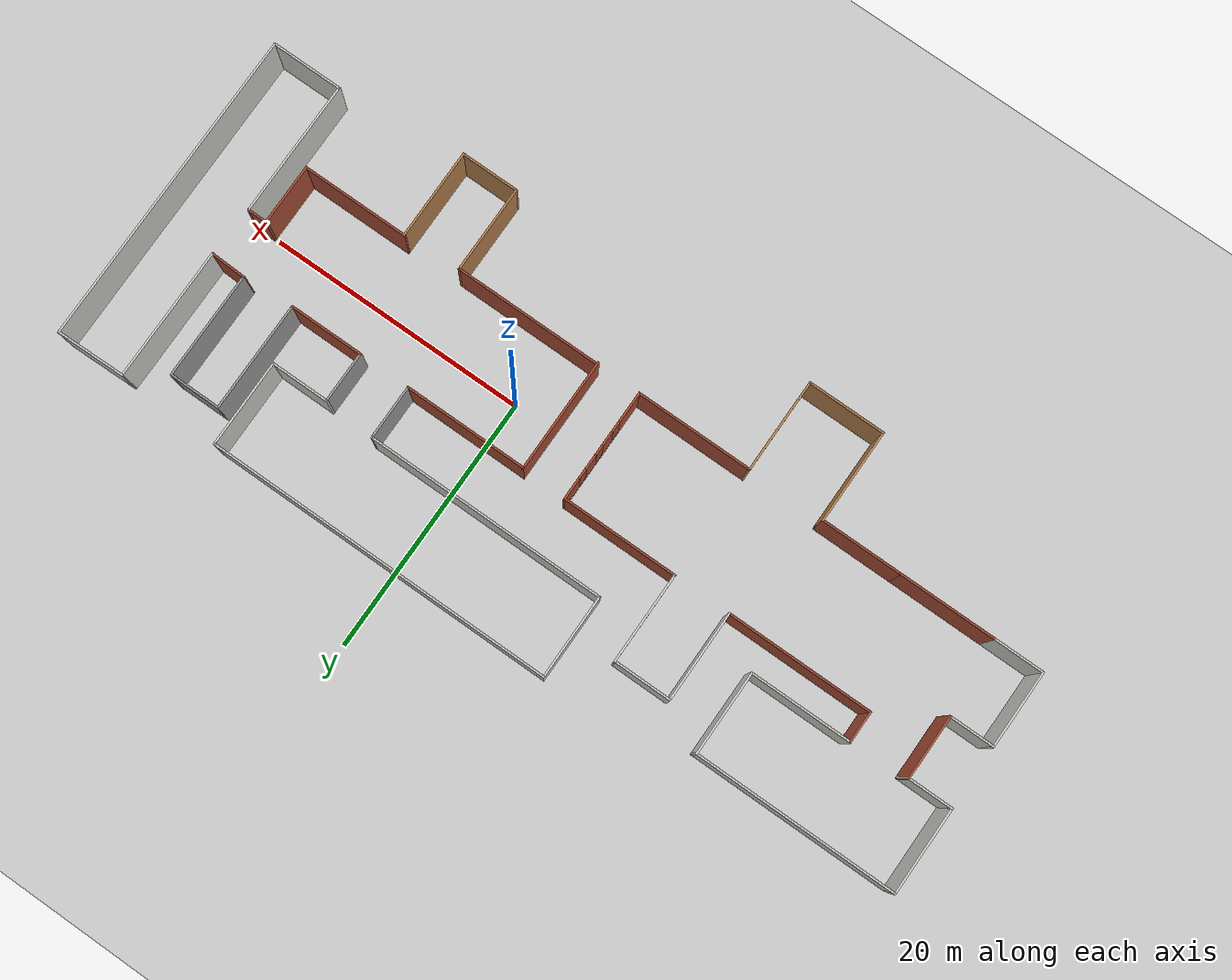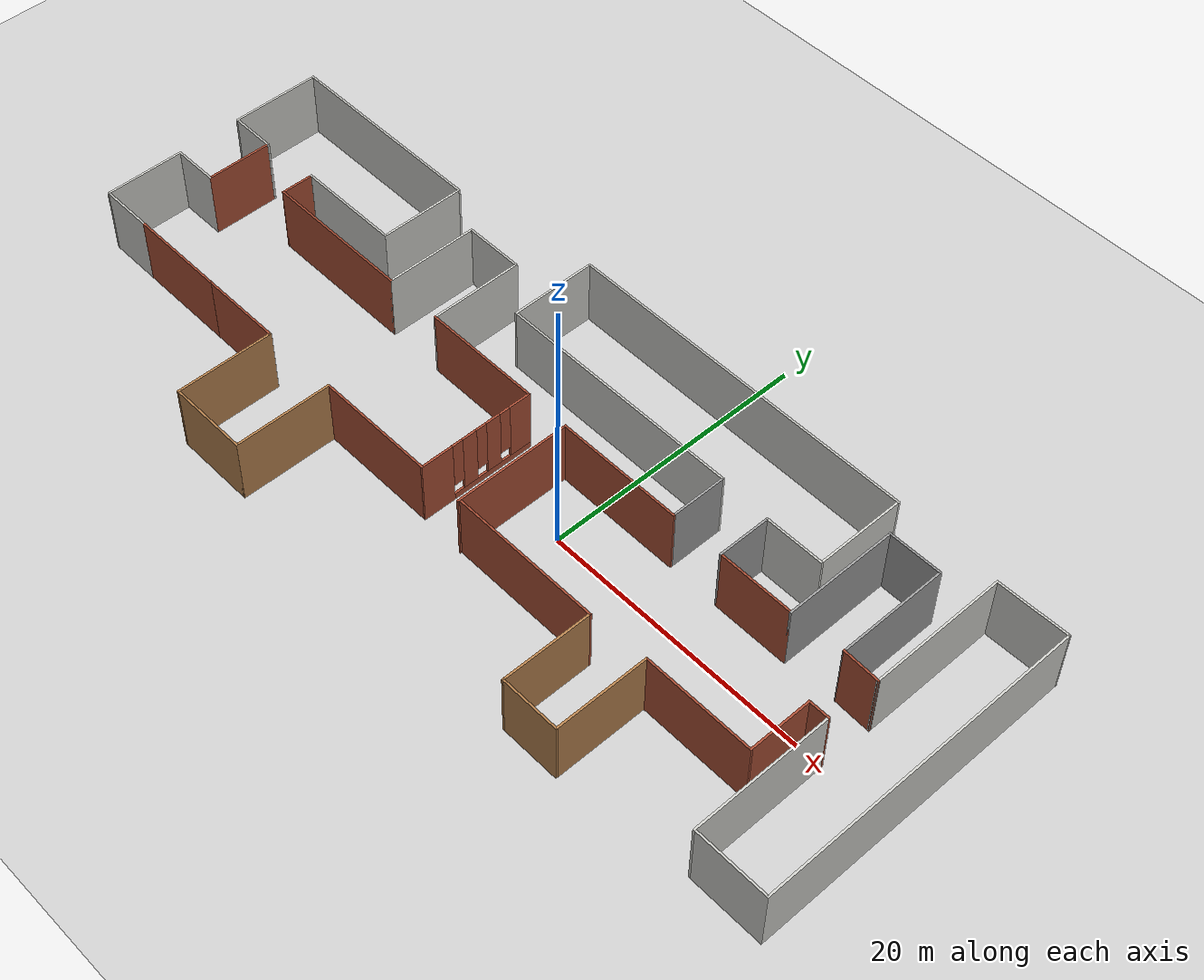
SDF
<sdf version="1.7">
 <world name="default">
  <light name="sun" type="directional">
   <pose>0 0 10 0 -0 0</pose>
   <diffuse>0.8 0.8 0.8 1</diffuse>
   <specular>0.2 0.2 0.2 1</specular>
   <attenuation>
    <range>1000</range>
    <constant>0.9</constant>
    <linear>0.01</linear>
    <quadratic>0.001</quadratic>
   </attenuation>
   <direction>-0.5 0.1 -0.9</direction>
   <spot><inner_angle>0</inner_angle><outer_angle>0</outer_angle><falloff>0</falloff></spot>
  </light>
  <model name="ground_plane">
   <static>1</static>
   <link name="link">
    <collision name="collision">
     <geometry><plane><normal>0 0 1</normal><size>100 100</size></plane></geometry>
     <surface><friction><ode><mu>100</mu><mu2>50</mu2></ode></friction></surface>
    </collision>
    <visual name="visual">
     <cast_shadows>0</cast_shadows>
     <geometry><plane><normal>0 0 1</normal><size>100 100</size></plane></geometry>
     <material>
      <script><uri>file://media/materials/scripts/gazebo.material</uri><name>Gazebo/Grey</name></script>
     </material>
    </visual>
   </link>
  </model>
  <gravity>0 0 -9.8</gravity>
  <magnetic_field>6e-06 2.3e-05 -4.2e-05</magnetic_field>
  <atmosphere type="adiabatic"/>
  <physics type="ode">
   <max_step_size>0.001</max_step_size>
   <real_time_factor>1</real_time_factor>
   <real_time_update_rate>1000</real_time_update_rate>
  </physics>
  <scene><ambient>0.4 0.4 0.4 1</ambient><background>0.7 0.7 0.7 1</background><shadows>1</shadows></scene>
  <audio><device>default</device></audio>
  <spherical_coordinates>
   <surface_model>EARTH_WGS84</surface_model>
   <latitude_deg>0</latitude_deg>
   <longitude_deg>0</longitude_deg>
   <elevation>0</elevation>
   <heading_deg>0</heading_deg>
  </spherical_coordinates>
  <model name="floor_plan">
   <pose>-5.74716 1.10187 0 0 -0 0</pose>
   <link name="Wall_0">
    <collision name="Wall_0_Collision">
     <geometry><box><size>7.5 0.15 5</size></box></geometry>
     <pose>0 0 2.5 0 -0 0</pose>
    </collision>
    <visual name="Wall_0_Visual">
     <pose>0 0 2.5 0 -0 0</pose>
     <geometry><box><size>7.5 0.15 5</size></box></geometry>
     <material>
      <script><uri>file://media/materials/scripts/gazebo.material</uri><name>Gazebo/Bricks</name></script>
      <ambient>0.862745 0.541176 0.866667 1</ambient>
     </material>
     <meta><layer>0</layer></meta>
    </visual>
    <pose>-25.4462 -5.9275 0 0 -0 3.14159</pose>
   </link>
   <link name="Wall_1">
    <collision name="Wall_1_Collision">
     <geometry><box><size>4 0.15 5</size></box></geometry>
     <pose>0 0 2.5 0 -0 0</pose>
    </collision>
    <visual name="Wall_1_Visual">
     <pose>0 0 2.5 0 -0 0</pose>
     <geometry><box><size>4 0.15 5</size></box></geometry>
     <material>
      <script><uri>file://media/materials/scripts/gazebo.material</uri><name>Gazebo/CeilingTiled</name></script>
      <ambient>1 1 1 1</ambient>
     </material>
     <meta><layer>0</layer></meta>
    </visual>
    <pose>-31.0462 -5.9275 0 0 -0 3.14159</pose>
   </link>
   <link name="Wall_10">
    <collision name="Wall_10_Collision">
     <geometry><box><size>2.5 0.15 5</size></box></geometry>
     <pose>0 0 2.5 0 -0 0</pose>
    </collision>
    <visual name="Wall_10_Visual">
     <pose>0 0 2.5 0 -0 0</pose>
     <geometry><box><size>2.5 0.15 5</size></box></geometry>
     <material>
      <script><uri>file://media/materials/scripts/gazebo.material</uri><name>Gazebo/Bricks</name></script>
      <ambient>0.862745 0.541176 0.866667 1</ambient>
     </material>
     <meta><layer>0</layer></meta>
    </visual>
    <pose>-25.2212 3.8475 0 0 -0 -1.5708</pose>
   </link>
   <link name="Wall_11">
    <collision name="Wall_11_Collision">
     <geometry><box><size>11.25 0.15 5</size></box></geometry>
     <pose>0 0 2.5 0 -0 0</pose>
    </collision>
    <visual name="Wall_11_Visual">
     <pose>0 0 2.5 0 -0 0</pose>
     <geometry><box><size>11.25 0.15 5</size></box></geometry>
     <material>
      <script><uri>file://media/materials/scripts/gazebo.material</uri><name>Gazebo/Bricks</name></script>
      <ambient>0.862745 0.541176 0.866667 1</ambient>
     </material>
     <meta><layer>0</layer></meta>
    </visual>
    <pose>-19.6712 2.6725 0 0 -0 0</pose>
   </link>
   <link name="Wall_12">
    <collision name="Wall_12_Collision">
     <geometry><box><size>7 0.15 5</size></box></geometry>
     <pose>0 0 2.5 0 -0 0</pose>
    </collision>
    <visual name="Wall_12_Visual">
     <pose>0 0 2.5 0 -0 0</pose>
     <geometry><box><size>7 0.15 5</size></box></geometry>
     <material>
      <script><uri>file://media/materials/scripts/gazebo.material</uri><name>Gazebo/CeilingTiled</name></script>
      <ambient>1 1 1 1</ambient>
     </material>
     <meta><layer>0</layer></meta>
    </visual>
    <pose>-14.1212 6.0975 0 0 -0 1.5708</pose>
   </link>
   <link name="Wall_13">
    <collision name="Wall_13_Collision">
     <geometry><box><size>4.5 0.15 5</size></box></geometry>
     <pose>0 0 2.5 0 -0 0</pose>
    </collision>
    <visual name="Wall_13_Visual">
     <pose>0 0 2.5 0 -0 0</pose>
     <geometry><box><size>4.5 0.15 5</size></box></geometry>
     <material>
      <script><uri>file://media/materials/scripts/gazebo.material</uri><name>Gazebo/CeilingTiled</name></script>
      <ambient>1 1 1 1</ambient>
     </material>
     <meta><layer>0</layer></meta>
    </visual>
    <pose>-11.9462 9.5225 0 0 -0 0</pose>
   </link>
   <link name="Wall_14">
    <collision name="Wall_14_Collision">
     <geometry><box><size>7 0.15 5</size></box></geometry>
     <pose>0 0 2.5 0 -0 0</pose>
    </collision>
    <visual name="Wall_14_Visual">
     <pose>0 0 2.5 0 -0 0</pose>
     <geometry><box><size>7 0.15 5</size></box></geometry>
     <material>
      <script><uri>file://media/materials/scripts/gazebo.material</uri><name>Gazebo/CeilingTiled</name></script>
      <ambient>1 1 1 1</ambient>
     </material>
     <meta><layer>0</layer></meta>
    </visual>
    <pose>-9.77116 6.0975 0 0 -0 -1.5708</pose>
   </link>
   <link name="Wall_15">
    <collision name="Wall_15_Collision">
     <geometry><box><size>8.83176 0.15 5</size></box></geometry>
     <pose>0 0 2.5 0 -0 0</pose>
    </collision>
    <visual name="Wall_15_Visual">
     <pose>0 0 2.5 0 -0 0</pose>
     <geometry><box><size>8.83176 0.15 5</size></box></geometry>
     <material>
      <script><uri>file://media/materials/scripts/gazebo.material</uri><name>Gazebo/Bricks</name></script>
      <ambient>0.862745 0.541176 0.866667 1</ambient>
     </material>
     <meta><layer>0</layer></meta>
    </visual>
    <pose>-5.43066 2.6725 0 0 -0 0</pose>
   </link>
   <link name="Wall_18">
    <collision name="Wall_18_Collision">
     <geometry><box><size>6.25 0.15 5</size></box></geometry>
     <pose>0 0 2.5 0 -0 0</pose>
    </collision>
    <visual name="Wall_18_Visual">
     <pose>0 0 2.5 0 -0 0</pose>
     <geometry><box><size>6.25 0.15 5</size></box></geometry>
     <material>
      <script><uri>file://media/materials/scripts/gazebo.material</uri><name>Gazebo/Bricks</name></script>
      <ambient>0.862745 0.541176 0.866667 1</ambient>
     </material>
     <meta><layer>0</layer></meta>
    </visual>
    <pose>-18.7212 -5.9275 0 0 -0 0</pose>
   </link>
   <link name="Wall_19">
    <collision name="Wall_19_Collision">
     <geometry><box><size>7.25 0.15 5</size></box></geometry>
     <pose>0 0 2.5 0 -0 0</pose>
    </collision>
    <visual name="Wall_19_Visual">
     <pose>0 0 2.5 0 -0 0</pose>
     <geometry><box><size>7.25 0.15 5</size></box></geometry>
     <material>
      <script><uri>file://media/materials/scripts/gazebo.material</uri><name>Gazebo/Wood</name></script>
      <ambient>1 1 1 1</ambient>
     </material>
     <meta><layer>0</layer></meta>
    </visual>
    <pose>-15.6712 -9.4775 0 0 -0 -1.5708</pose>
   </link>
   <link name="Wall_2">
    <collision name="Wall_2_Collision">
     <geometry><box><size>6 0.15 5</size></box></geometry>
     <pose>0 0 2.5 0 -0 0</pose>
    </collision>
    <visual name="Wall_2_Visual">
     <pose>0 0 2.5 0 -0 0</pose>
     <geometry><box><size>6 0.15 5</size></box></geometry>
     <material>
      <script><uri>file://media/materials/scripts/gazebo.material</uri><name>Gazebo/CeilingTiled</name></script>
      <ambient>1 1 1 1</ambient>
     </material>
     <meta><layer>0</layer></meta>
    </visual>
    <pose>-32.9712 -3.0025 0 0 -0 1.5708</pose>
   </link>
   <link name="Wall_20">
    <collision name="Wall_20_Collision">
     <geometry><box><size>6 0.15 5</size></box></geometry>
     <pose>0 0 2.5 0 -0 0</pose>
    </collision>
    <visual name="Wall_20_Visual">
     <pose>0 0 2.5 0 -0 0</pose>
     <geometry><box><size>6 0.15 5</size></box></geometry>
     <material>
      <script><uri>file://media/materials/scripts/gazebo.material</uri><name>Gazebo/Wood</name></script>
      <ambient>1 1 1 1</ambient>
     </material>
     <meta><layer>0</layer></meta>
    </visual>
    <pose>-12.7462 -13.0275 0 0 -0 0</pose>
   </link>
   <link name="Wall_26">
    <collision name="Wall_26_Collision">
     <geometry><box><size>7.25 0.15 5</size></box></geometry>
     <pose>0 0 2.5 0 -0 0</pose>
    </collision>
    <visual name="Wall_26_Visual">
     <pose>0 0 2.5 0 -0 0</pose>
     <geometry><box><size>7.25 0.15 5</size></box></geometry>
     <material>
      <script><uri>file://media/materials/scripts/gazebo.material</uri><name>Gazebo/Wood</name></script>
      <ambient>1 1 1 1</ambient>
     </material>
     <meta><layer>0</layer></meta>
    </visual>
    <pose>-9.82116 -9.4775 0 0 -0 1.5708</pose>
   </link>
   <link name="Wall_27">
    <collision name="Wall_27_Collision">
     <geometry><box><size>9 0.15 5</size></box></geometry>
     <pose>0 0 2.5 0 -0 0</pose>
    </collision>
    <visual name="Wall_27_Visual">
     <pose>0 0 2.5 0 -0 0</pose>
     <geometry><box><size>9 0.15 5</size></box></geometry>
     <material>
      <script><uri>file://media/materials/scripts/gazebo.material</uri><name>Gazebo/Bricks</name></script>
      <ambient>0.862745 0.541176 0.866667 1</ambient>
     </material>
     <meta><layer>0</layer></meta>
    </visual>
    <pose>-5.39616 -5.9275 0 0 -0 0</pose>
   </link>
   <link name="Wall_28">
    <pose>-0.971159 -1.6275 0 0 -0 1.5708</pose>
    <visual name="Wall_28_Visual_0">
     <pose>-3.15585 0 2.5 0 -0 0</pose>
     <geometry><box><size>2.43912 0.15 5</size></box></geometry>
     <material>
      <script><uri>file://media/materials/scripts/gazebo.material</uri><name>Gazebo/Bricks</name></script>
      <ambient>0.862745 0.541176 0.866667 1</ambient>
     </material>
     <meta><layer>0</layer></meta>
    </visual>
    <collision name="Wall_28_Collision_0">
     <geometry><box><size>2.43912 0.15 5</size></box></geometry>
     <pose>-3.15585 0 2.5 0 -0 0</pose>
    </collision>
    <visual name="Wall_28_Visual_1">
     <pose>1.21956 0 0.25 0 -0 0</pose>
     <geometry><box><size>6.31171 0.15 0.5</size></box></geometry>
     <material>
      <script><uri>file://media/materials/scripts/gazebo.material</uri><name>Gazebo/Bricks</name></script>
      <ambient>0.862745 0.541176 0.866667 1</ambient>
     </material>
     <meta><layer>0</layer></meta>
    </visual>
    <collision name="Wall_28_Collision_1">
     <geometry><box><size>6.31171 0.15 0.5</size></box></geometry>
     <pose>1.21956 0 0.25 0 -0 0</pose>
    </collision>
    <visual name="Wall_28_Visual_2">
     <pose>-0.581077 0 2.75 0 -0 0</pose>
     <geometry><box><size>1.11044 0.15 4.5</size></box></geometry>
     <material>
      <script><uri>file://media/materials/scripts/gazebo.material</uri><name>Gazebo/Bricks</name></script>
      <ambient>0.862745 0.541176 0.866667 1</ambient>
     </material>
     <meta><layer>0</layer></meta>
    </visual>
    <collision name="Wall_28_Collision_2">
     <geometry><box><size>1.11044 0.15 4.5</size></box></geometry>
     <pose>-0.581077 0 2.75 0 -0 0</pose>
    </collision>
    <visual name="Wall_28_Visual_3">
     <pose>1.32936 0 2.75 0 -0 0</pose>
     <geometry><box><size>1.11044 0.15 4.5</size></box></geometry>
     <material>
      <script><uri>file://media/materials/scripts/gazebo.material</uri><name>Gazebo/Bricks</name></script>
      <ambient>0.862745 0.541176 0.866667 1</ambient>
     </material>
     <meta><layer>0</layer></meta>
    </visual>
    <collision name="Wall_28_Collision_3">
     <geometry><box><size>1.11044 0.15 4.5</size></box></geometry>
     <pose>1.32936 0 2.75 0 -0 0</pose>
    </collision>
    <visual name="Wall_28_Visual_4">
     <pose>3.53 0 2.75 0 -0 0</pose>
     <geometry><box><size>1.69083 0.15 4.5</size></box></geometry>
     <material>
      <script><uri>file://media/materials/scripts/gazebo.material</uri><name>Gazebo/Bricks</name></script>
      <ambient>0.862745 0.541176 0.866667 1</ambient>
     </material>
     <meta><layer>0</layer></meta>
    </visual>
    <collision name="Wall_28_Collision_4">
     <geometry><box><size>1.69083 0.15 4.5</size></box></geometry>
     <pose>3.53 0 2.75 0 -0 0</pose>
    </collision>
    <visual name="Wall_28_Visual_5">
     <pose>-1.5363 0 3.15 0 -0 0</pose>
     <geometry><box><size>0.8 0.15 3.7</size></box></geometry>
     <material>
      <script><uri>file://media/materials/scripts/gazebo.material</uri><name>Gazebo/Bricks</name></script>
      <ambient>0.862745 0.541176 0.866667 1</ambient>
     </material>
     <meta><layer>0</layer></meta>
    </visual>
    <collision name="Wall_28_Collision_5">
     <geometry><box><size>0.8 0.15 3.7</size></box></geometry>
     <pose>-1.5363 0 3.15 0 -0 0</pose>
    </collision>
    <visual name="Wall_28_Visual_6">
     <pose>0.374143 0 3.15 0 -0 0</pose>
     <geometry><box><size>0.8 0.15 3.7</size></box></geometry>
     <material>
      <script><uri>file://media/materials/scripts/gazebo.material</uri><name>Gazebo/Bricks</name></script>
      <ambient>0.862745 0.541176 0.866667 1</ambient>
     </material>
     <meta><layer>0</layer></meta>
    </visual>
    <collision name="Wall_28_Collision_6">
     <geometry><box><size>0.8 0.15 3.7</size></box></geometry>
     <pose>0.374143 0 3.15 0 -0 0</pose>
    </collision>
    <visual name="Wall_28_Visual_7">
     <pose>2.28458 0 3.15 0 -0 0</pose>
     <geometry><box><size>0.8 0.15 3.7</size></box></geometry>
     <material>
      <script><uri>file://media/materials/scripts/gazebo.material</uri><name>Gazebo/Bricks</name></script>
      <ambient>0.862745 0.541176 0.866667 1</ambient>
     </material>
     <meta><layer>0</layer></meta>
    </visual>
    <collision name="Wall_28_Collision_7">
     <geometry><box><size>0.8 0.15 3.7</size></box></geometry>
     <pose>2.28458 0 3.15 0 -0 0</pose>
    </collision>
   </link>
   <link name="Wall_3">
    <collision name="Wall_3_Collision">
     <geometry><box><size>3.5 0.15 5</size></box></geometry>
     <pose>0 0 2.5 0 -0 0</pose>
    </collision>
    <visual name="Wall_3_Visual">
     <pose>0 0 2.5 0 -0 0</pose>
     <geometry><box><size>3.5 0.15 5</size></box></geometry>
     <material>
      <script><uri>file://media/materials/scripts/gazebo.material</uri><name>Gazebo/CeilingTiled</name></script>
      <ambient>1 1 1 1</ambient>
     </material>
     <meta><layer>0</layer></meta>
    </visual>
    <pose>-31.2962 -0.0775 0 0 -0 0</pose>
   </link>
   <link name="Wall_30">
    <collision name="Wall_30_Collision">
     <geometry><box><size>8.75 0.15 5</size></box></geometry>
     <pose>0 0 2.5 0 -0 0</pose>
    </collision>
    <visual name="Wall_30_Visual">
     <pose>0 0 2.5 0 -0 0</pose>
     <geometry><box><size>8.75 0.15 5</size></box></geometry>
     <material>
      <script><uri>file://media/materials/scripts/gazebo.material</uri><name>Gazebo/Bricks</name></script>
      <ambient>0.384314 0.627451 0.917647 1</ambient>
     </material>
     <meta><layer>0</layer></meta>
    </visual>
    <pose>2.43784 -1.7225 0 0 -0 1.5708</pose>
   </link>
   <link name="Wall_31">
    <collision name="Wall_31_Collision">
     <geometry><box><size>9.5 0.15 5</size></box></geometry>
     <pose>0 0 2.5 0 -0 0</pose>
    </collision>
    <visual name="Wall_31_Visual">
     <pose>0 0 2.5 0 -0 0</pose>
     <geometry><box><size>9.5 0.15 5</size></box></geometry>
     <material>
      <script><uri>file://media/materials/scripts/gazebo.material</uri><name>Gazebo/Bricks</name></script>
      <ambient>0.384314 0.627451 0.917647 1</ambient>
     </material>
     <meta><layer>0</layer></meta>
    </visual>
    <pose>7.11284 2.5775 0 0 -0 0</pose>
   </link>
   <link name="Wall_32">
    <collision name="Wall_32_Collision">
     <geometry><box><size>4.25 0.15 5</size></box></geometry>
     <pose>0 0 2.5 0 -0 0</pose>
    </collision>
    <visual name="Wall_32_Visual">
     <pose>0 0 2.5 0 -0 0</pose>
     <geometry><box><size>4.25 0.15 5</size></box></geometry>
     <material>
      <script><uri>file://media/materials/scripts/gazebo.material</uri><name>Gazebo/Grey</name></script>
      <ambient>1 1 1 1</ambient>
     </material>
     <meta><layer>0</layer></meta>
    </visual>
    <pose>11.7878 4.6275 0 0 -0 1.5708</pose>
   </link>
   <link name="Wall_33">
    <collision name="Wall_33_Collision">
     <geometry><box><size>18.5 0.15 5</size></box></geometry>
     <pose>0 0 2.5 0 -0 0</pose>
    </collision>
    <visual name="Wall_33_Visual">
     <pose>0 0 2.5 0 -0 0</pose>
     <geometry><box><size>18.5 0.15 5</size></box></geometry>
     <material>
      <script><uri>file://media/materials/scripts/gazebo.material</uri><name>Gazebo/CeilingTiled</name></script>
      <ambient>1 1 1 1</ambient>
     </material>
     <meta><layer>0</layer></meta>
    </visual>
    <pose>2.61284 6.6775 0 0 -0 3.14159</pose>
   </link>
   <link name="Wall_34">
    <collision name="Wall_34_Collision">
     <geometry><box><size>6.5 0.15 5</size></box></geometry>
     <pose>0 0 2.5 0 -0 0</pose>
    </collision>
    <visual name="Wall_34_Visual">
     <pose>0 0 2.5 0 -0 0</pose>
     <geometry><box><size>6.5 0.15 5</size></box></geometry>
     <material>
      <script><uri>file://media/materials/scripts/gazebo.material</uri><name>Gazebo/CeilingTiled</name></script>
      <ambient>1 1 1 1</ambient>
     </material>
     <meta><layer>0</layer></meta>
    </visual>
    <pose>-6.56216 9.8525 0 0 -0 1.5708</pose>
   </link>
   <link name="Wall_36">
    <collision name="Wall_36_Collision">
     <geometry><box><size>6.75 0.15 5</size></box></geometry>
     <pose>0 0 2.5 0 -0 0</pose>
    </collision>
    <visual name="Wall_36_Visual">
     <pose>0 0 2.5 0 -0 0</pose>
     <geometry><box><size>6.75 0.15 5</size></box></geometry>
     <material>
      <script><uri>file://media/materials/scripts/gazebo.material</uri><name>Gazebo/CeilingTiled</name></script>
      <ambient>1 1 1 1</ambient>
     </material>
     <meta><layer>0</layer></meta>
    </visual>
    <pose>20.0378 9.7275 0 0 -0 -1.5708</pose>
   </link>
   <link name="Wall_37">
    <collision name="Wall_37_Collision">
     <geometry><box><size>4.5 0.15 5</size></box></geometry>
     <pose>0 0 2.5 0 -0 0</pose>
    </collision>
    <visual name="Wall_37_Visual">
     <pose>0 0 2.5 0 -0 0</pose>
     <geometry><box><size>4.5 0.15 5</size></box></geometry>
     <material>
      <script><uri>file://media/materials/scripts/gazebo.material</uri><name>Gazebo/CeilingTiled</name></script>
      <ambient>1 1 1 1</ambient>
     </material>
     <meta><layer>0</layer></meta>
    </visual>
    <pose>17.8628 6.4275 0 0 -0 3.14159</pose>
   </link>
   <link name="Wall_38">
    <collision name="Wall_38_Collision">
     <geometry><box><size>4 0.15 5</size></box></geometry>
     <pose>0 0 2.5 0 -0 0</pose>
    </collision>
    <visual name="Wall_38_Visual">
     <pose>0 0 2.5 0 -0 0</pose>
     <geometry><box><size>4 0.15 5</size></box></geometry>
     <material>
      <script><uri>file://media/materials/scripts/gazebo.material</uri><name>Gazebo/Grey</name></script>
      <ambient>1 1 1 1</ambient>
     </material>
     <meta><layer>0</layer></meta>
    </visual>
    <pose>15.6878 4.5025 0 0 -0 -1.5708</pose>
   </link>
   <link name="Wall_39">
    <collision name="Wall_39_Collision">
     <geometry><box><size>5.75 0.15 5</size></box></geometry>
     <pose>0 0 2.5 0 -0 0</pose>
    </collision>
    <visual name="Wall_39_Visual">
     <pose>0 0 2.5 0 -0 0</pose>
     <geometry><box><size>5.75 0.15 5</size></box></geometry>
     <material>
      <script><uri>file://media/materials/scripts/gazebo.material</uri><name>Gazebo/Bricks</name></script>
      <ambient>0.384314 0.627451 0.917647 1</ambient>
     </material>
     <meta><layer>0</layer></meta>
    </visual>
    <pose>18.4878 2.5775 0 0 -0 0</pose>
   </link>
   <link name="Wall_4">
    <collision name="Wall_4_Collision">
     <geometry><box><size>5 0.15 5</size></box></geometry>
     <pose>0 0 2.5 0 -0 0</pose>
    </collision>
    <visual name="Wall_4_Visual">
     <pose>0 0 2.5 0 -0 0</pose>
     <geometry><box><size>5 0.15 5</size></box></geometry>
     <material>
      <script><uri>file://media/materials/scripts/gazebo.material</uri><name>Gazebo/Bricks</name></script>
      <ambient>0.862745 0.541176 0.866667 1</ambient>
     </material>
     <meta><layer>0</layer></meta>
    </visual>
    <pose>-29.6212 2.3475 0 0 -0 1.5708</pose>
   </link>
   <link name="Wall_40">
    <collision name="Wall_40_Collision">
     <geometry><box><size>8.5 0.15 5</size></box></geometry>
     <pose>0 0 2.5 0 -0 0</pose>
    </collision>
    <visual name="Wall_40_Visual">
     <pose>0 0 2.5 0 -0 0</pose>
     <geometry><box><size>8.5 0.15 5</size></box></geometry>
     <material>
      <script><uri>file://media/materials/scripts/gazebo.material</uri><name>Gazebo/Grey</name></script>
      <ambient>1 1 1 1</ambient>
     </material>
     <meta><layer>0</layer></meta>
    </visual>
    <pose>21.2878 6.7525 0 0 -0 1.5708</pose>
   </link>
   <link name="Wall_41">
    <collision name="Wall_41_Collision">
     <geometry><box><size>4 0.15 5</size></box></geometry>
     <pose>0 0 2.5 0 -0 0</pose>
    </collision>
    <visual name="Wall_41_Visual">
     <pose>0 0 2.5 0 -0 0</pose>
     <geometry><box><size>4 0.15 5</size></box></geometry>
     <material>
      <script><uri>file://media/materials/scripts/gazebo.material</uri><name>Gazebo/Grey</name></script>
      <ambient>1 1 1 1</ambient>
     </material>
     <meta><layer>0</layer></meta>
    </visual>
    <pose>23.2128 10.9275 0 0 -0 0</pose>
   </link>
   <link name="Wall_42">
    <collision name="Wall_42_Collision">
     <geometry><box><size>8.25 0.15 5</size></box></geometry>
     <pose>0 0 2.5 0 -0 0</pose>
    </collision>
    <visual name="Wall_42_Visual">
     <pose>0 0 2.5 0 -0 0</pose>
     <geometry><box><size>8.25 0.15 5</size></box></geometry>
     <material>
      <script><uri>file://media/materials/scripts/gazebo.material</uri><name>Gazebo/Grey</name></script>
      <ambient>1 1 1 1</ambient>
     </material>
     <meta><layer>0</layer></meta>
    </visual>
    <pose>25.1378 6.8775 0 0 -0 -1.5708</pose>
   </link>
   <link name="Wall_43">
    <collision name="Wall_43_Collision">
     <geometry><box><size>2.78768 0.15 5</size></box></geometry>
     <pose>0 0 2.5 0 -0 0</pose>
    </collision>
    <visual name="Wall_43_Visual">
     <pose>0 0 2.5 0 -0 0</pose>
     <geometry><box><size>2.78768 0.15 5</size></box></geometry>
     <material>
      <script><uri>file://media/materials/scripts/gazebo.material</uri><name>Gazebo/Bricks</name></script>
      <ambient>0.384314 0.627451 0.917647 1</ambient>
     </material>
     <meta><layer>0</layer></meta>
    </visual>
    <pose>26.4558 2.7805 0 0 -0 -0.035645</pose>
   </link>
   <link name="Wall_44">
    <collision name="Wall_44_Collision">
     <geometry><box><size>10.25 0.15 5</size></box></geometry>
     <pose>0 0 2.5 0 -0 0</pose>
    </collision>
    <visual name="Wall_44_Visual">
     <pose>0 0 2.5 0 -0 0</pose>
     <geometry><box><size>10.25 0.15 5</size></box></geometry>
     <material>
      <script><uri>file://media/materials/scripts/gazebo.material</uri><name>Gazebo/CeilingTiled</name></script>
      <ambient>1 1 1 1</ambient>
     </material>
     <meta><layer>0</layer></meta>
    </visual>
    <pose>27.7738 7.7835 0 0 -0 1.5708</pose>
   </link>
   <link name="Wall_45">
    <collision name="Wall_45_Collision">
     <geometry><box><size>5.3472 0.15 5</size></box></geometry>
     <pose>0 0 2.5 0 -0 0</pose>
    </collision>
    <visual name="Wall_45_Visual">
     <pose>0 0 2.5 0 -0 0</pose>
     <geometry><box><size>5.3472 0.15 5</size></box></geometry>
     <material>
      <script><uri>file://media/materials/scripts/gazebo.material</uri><name>Gazebo/CeilingTiled</name></script>
      <ambient>1 1 1 1</ambient>
     </material>
     <meta><layer>0</layer></meta>
    </visual>
    <pose>30.3718 12.8805 0 0 -0 0.018089</pose>
   </link>
   <link name="Wall_46">
    <collision name="Wall_46_Collision">
     <geometry><box><size>24.5 0.15 5</size></box></geometry>
     <pose>0 0 2.5 0 -0 0</pose>
    </collision>
    <visual name="Wall_46_Visual">
     <pose>0 0 2.5 0 -0 0</pose>
     <geometry><box><size>24.5 0.15 5</size></box></geometry>
     <material>
      <script><uri>file://media/materials/scripts/gazebo.material</uri><name>Gazebo/CeilingTiled</name></script>
      <ambient>1 1 1 1</ambient>
     </material>
     <meta><layer>0</layer></meta>
    </visual>
    <pose>32.9698 0.7525 0 0 -0 -1.5708</pose>
   </link>
   <link name="Wall_47">
    <collision name="Wall_47_Collision">
     <geometry><box><size>5.53165 0.15 5</size></box></geometry>
     <pose>0 0 2.5 0 -0 0</pose>
    </collision>
    <visual name="Wall_47_Visual">
     <pose>0 0 2.5 0 -0 0</pose>
     <geometry><box><size>5.53165 0.15 5</size></box></geometry>
     <material>
      <script><uri>file://media/materials/scripts/gazebo.material</uri><name>Gazebo/CeilingTiled</name></script>
      <ambient>1 1 1 1</ambient>
     </material>
     <meta><layer>0</layer></meta>
    </visual>
    <pose>30.2788 -11.4225 0 0 -0 3.14159</pose>
   </link>
   <link name="Wall_48">
    <collision name="Wall_48_Collision">
     <geometry><box><size>10.5 0.15 5</size></box></geometry>
     <pose>0 0 2.5 0 -0 0</pose>
    </collision>
    <visual name="Wall_48_Visual">
     <pose>0 0 2.5 0 -0 0</pose>
     <geometry><box><size>10.5 0.15 5</size></box></geometry>
     <material>
      <script><uri>file://media/materials/scripts/gazebo.material</uri><name>Gazebo/CeilingTiled</name></script>
      <ambient>1 1 1 1</ambient>
     </material>
     <meta><layer>0</layer></meta>
    </visual>
    <pose>27.5878 -6.2475 0 0 -0 1.5708</pose>
   </link>
   <link name="Wall_49">
    <collision name="Wall_49_Collision">
     <geometry><box><size>1.60053 0.15 5</size></box></geometry>
     <pose>0 0 2.5 0 -0 0</pose>
    </collision>
    <visual name="Wall_49_Visual">
     <pose>0 0 2.5 0 -0 0</pose>
     <geometry><box><size>1.60053 0.15 5</size></box></geometry>
     <material>
      <script><uri>file://media/materials/scripts/gazebo.material</uri><name>Gazebo/Bricks</name></script>
      <ambient>0.384314 0.627451 0.917647 1</ambient>
     </material>
     <meta><layer>0</layer></meta>
    </visual>
    <pose>26.8628 -1.0725 0 0 -0 3.14159</pose>
   </link>
   <link name="Wall_5">
    <collision name="Wall_5_Collision">
     <geometry><box><size>3.5 0.15 5</size></box></geometry>
     <pose>0 0 2.5 0 -0 0</pose>
    </collision>
    <visual name="Wall_5_Visual">
     <pose>0 0 2.5 0 -0 0</pose>
     <geometry><box><size>3.5 0.15 5</size></box></geometry>
     <material>
      <script><uri>file://media/materials/scripts/gazebo.material</uri><name>Gazebo/CeilingTiled</name></script>
      <ambient>1 1 1 1</ambient>
     </material>
     <meta><layer>0</layer></meta>
    </visual>
    <pose>-31.2962 4.7725 0 0 -0 3.14159</pose>
   </link>
   <link name="Wall_50">
    <collision name="Wall_50_Collision">
     <geometry><box><size>4.75 0.15 5</size></box></geometry>
     <pose>0 0 2.5 0 -0 0</pose>
    </collision>
    <visual name="Wall_50_Visual">
     <pose>0 0 2.5 0 -0 0</pose>
     <geometry><box><size>4.75 0.15 5</size></box></geometry>
     <material>
      <script><uri>file://media/materials/scripts/gazebo.material</uri><name>Gazebo/Bricks</name></script>
      <ambient>0.384314 0.627451 0.917647 1</ambient>
     </material>
     <meta><layer>0</layer></meta>
    </visual>
    <pose>26.1378 -3.3725 0 0 -0 -1.5708</pose>
   </link>
   <link name="Wall_51">
    <collision name="Wall_51_Collision">
     <geometry><box><size>8.25 0.15 5</size></box></geometry>
     <pose>0 0 2.5 0 -0 0</pose>
    </collision>
    <visual name="Wall_51_Visual">
     <pose>0 0 2.5 0 -0 0</pose>
     <geometry><box><size>8.25 0.15 5</size></box></geometry>
     <material>
      <script><uri>file://media/materials/scripts/gazebo.material</uri><name>Gazebo/Bricks</name></script>
      <ambient>0.384314 0.627451 0.917647 1</ambient>
     </material>
     <meta><layer>0</layer></meta>
    </visual>
    <pose>22.0878 -5.6725 0 0 -0 3.14159</pose>
   </link>
   <link name="Wall_52">
    <collision name="Wall_52_Collision">
     <geometry><box><size>7 0.15 5</size></box></geometry>
     <pose>0 0 2.5 0 -0 0</pose>
    </collision>
    <visual name="Wall_52_Visual">
     <pose>0 0 2.5 0 -0 0</pose>
     <geometry><box><size>7 0.15 5</size></box></geometry>
     <material>
      <script><uri>file://media/materials/scripts/gazebo.material</uri><name>Gazebo/Wood</name></script>
      <ambient>1 1 1 1</ambient>
     </material>
     <meta><layer>0</layer></meta>
    </visual>
    <pose>18.0378 -9.0975 0 0 -0 -1.5708</pose>
   </link>
   <link name="Wall_53">
    <collision name="Wall_53_Collision">
     <geometry><box><size>4.5 0.15 5</size></box></geometry>
     <pose>0 0 2.5 0 -0 0</pose>
    </collision>
    <visual name="Wall_53_Visual">
     <pose>0 0 2.5 0 -0 0</pose>
     <geometry><box><size>4.5 0.15 5</size></box></geometry>
     <material>
      <script><uri>file://media/materials/scripts/gazebo.material</uri><name>Gazebo/Wood</name></script>
      <ambient>1 1 1 1</ambient>
     </material>
     <meta><layer>0</layer></meta>
    </visual>
    <pose>15.8628 -12.5225 0 0 -0 3.14159</pose>
   </link>
   <link name="Wall_54">
    <collision name="Wall_54_Collision">
     <geometry><box><size>6.75 0.15 5</size></box></geometry>
     <pose>0 0 2.5 0 -0 0</pose>
    </collision>
    <visual name="Wall_54_Visual">
     <pose>0 0 2.5 0 -0 0</pose>
     <geometry><box><size>6.75 0.15 5</size></box></geometry>
     <material>
      <script><uri>file://media/materials/scripts/gazebo.material</uri><name>Gazebo/Wood</name></script>
      <ambient>1 1 1 1</ambient>
     </material>
     <meta><layer>0</layer></meta>
    </visual>
    <pose>13.6878 -9.2225 0 0 -0 1.5708</pose>
   </link>
   <link name="Wall_55">
    <collision name="Wall_55_Collision">
     <geometry><box><size>11.25 0.15 5</size></box></geometry>
     <pose>0 0 2.5 0 -0 0</pose>
    </collision>
    <visual name="Wall_55_Visual">
     <pose>0 0 2.5 0 -0 0</pose>
     <geometry><box><size>11.25 0.15 5</size></box></geometry>
     <material>
      <script><uri>file://media/materials/scripts/gazebo.material</uri><name>Gazebo/Bricks</name></script>
      <ambient>0.384314 0.627451 0.917647 1</ambient>
     </material>
     <meta><layer>0</layer></meta>
    </visual>
    <pose>8.13784 -5.9225 0 0 -0 3.14159</pose>
   </link>
   <link name="Wall_57">
    <collision name="Wall_57_Collision">
     <geometry><box><size>26.75 0.15 5</size></box></geometry>
     <pose>0 0 2.5 0 -0 0</pose>
    </collision>
    <visual name="Wall_57_Visual">
     <pose>0 0 2.5 0 -0 0</pose>
     <geometry><box><size>26.75 0.15 5</size></box></geometry>
     <material>
      <script><uri>file://media/materials/scripts/gazebo.material</uri><name>Gazebo/CeilingTiled</name></script>
      <ambient>1 1 1 1</ambient>
     </material>
     <meta><layer>0</layer></meta>
    </visual>
    <pose>6.73784 13.0275 0 0 -0 0</pose>
   </link>
   <link name="Wall_6">
    <collision name="Wall_6_Collision">
     <geometry><box><size>6.75 0.15 5</size></box></geometry>
     <pose>0 0 2.5 0 -0 0</pose>
    </collision>
    <visual name="Wall_6_Visual">
     <pose>0 0 2.5 0 -0 0</pose>
     <geometry><box><size>6.75 0.15 5</size></box></geometry>
     <material>
      <script><uri>file://media/materials/scripts/gazebo.material</uri><name>Gazebo/CeilingTiled</name></script>
      <ambient>1 1 1 1</ambient>
     </material>
     <meta><layer>0</layer></meta>
    </visual>
    <pose>-32.9712 8.0725 0 0 -0 1.5708</pose>
   </link>
   <link name="Wall_7">
    <collision name="Wall_7_Collision">
     <geometry><box><size>15.6134 0.15 5</size></box></geometry>
     <pose>0 0 2.5 0 -0 0</pose>
    </collision>
    <visual name="Wall_7_Visual">
     <pose>0 0 2.5 0 -0 0</pose>
     <geometry><box><size>15.6134 0.15 5</size></box></geometry>
     <material>
      <script><uri>file://media/materials/scripts/gazebo.material</uri><name>Gazebo/CeilingTiled</name></script>
      <ambient>1 1 1 1</ambient>
     </material>
     <meta><layer>0</layer></meta>
    </visual>
    <pose>-25.2397 11.3725 0 0 -0 0</pose>
   </link>
   <link name="Wall_8">
    <collision name="Wall_8_Collision">
     <geometry><box><size>6.5 0.15 5</size></box></geometry>
     <pose>0 0 2.5 0 -0 0</pose>
    </collision>
    <visual name="Wall_8_Visual">
     <pose>0 0 2.5 0 -0 0</pose>
     <geometry><box><size>6.5 0.15 5</size></box></geometry>
     <material>
      <script><uri>file://media/materials/scripts/gazebo.material</uri><name>Gazebo/CeilingTiled</name></script>
      <ambient>1 1 1 1</ambient>
     </material>
     <meta><layer>0</layer></meta>
    </visual>
    <pose>-17.5082 8.1975 0 0 -0 -1.5708</pose>
   </link>
   <link name="Wall_9">
    <collision name="Wall_9_Collision">
     <geometry><box><size>7.86276 0.15 5</size></box></geometry>
     <pose>0 0 2.5 0 -0 0</pose>
    </collision>
    <visual name="Wall_9_Visual">
     <pose>0 0 2.5 0 -0 0</pose>
     <geometry><box><size>7.86276 0.15 5</size></box></geometry>
     <material>
      <script><uri>file://media/materials/scripts/gazebo.material</uri><name>Gazebo/CeilingTiled</name></script>
      <ambient>1 1 1 1</ambient>
     </material>
     <meta><layer>0</layer></meta>
    </visual>
    <pose>-21.3647 5.0225 0 0 -0 3.14159</pose>
   </link>
   <static>1</static>
  </model>
 </world>
</sdf>
